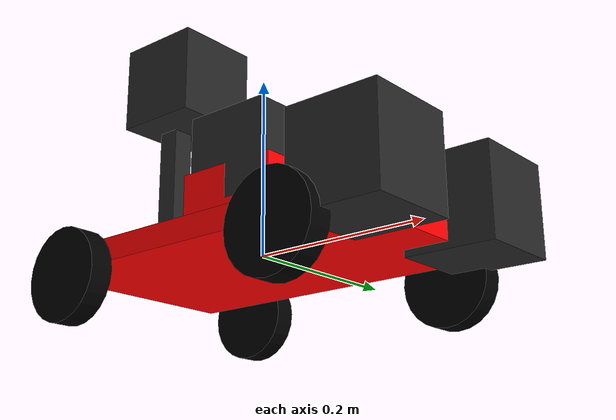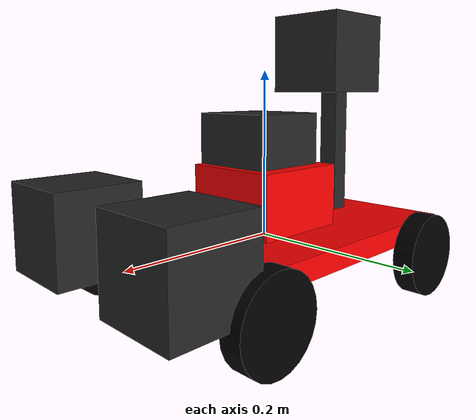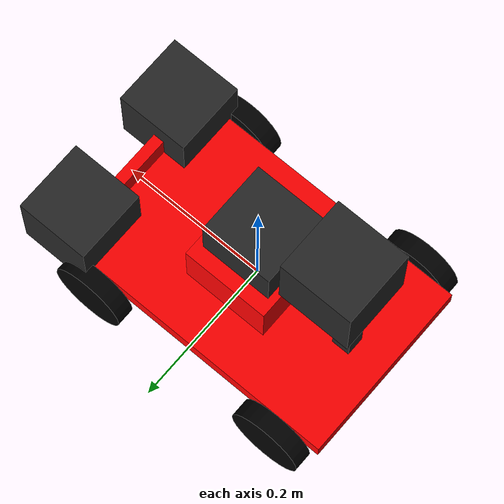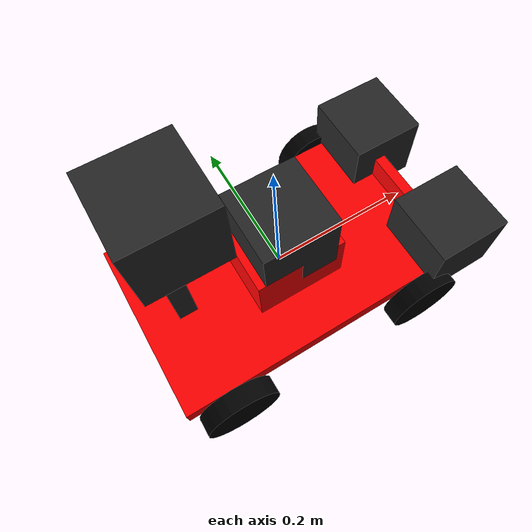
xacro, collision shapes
<?xml version="1.0"?>
<robot xmlns:xacro="http://www.ros.org/wiki/xacro" name="skid_steer">

    <xacro:include filename="$(find skid_steer_description)/urdf/wheels.xacro"/>
    <xacro:include filename="$(find skid_steer_description)/urdf/sensors.xacro"/>
    <xacro:include filename="$(find skid_steer_description)/urdf/plugins.gazebo"/>

    <link name="baseElbase">
    </link>
    <joint name="baseElbase_joint" type="fixed">
        <origin xyz="0.0 0.0 0.0" rpy="0.0 0.0 0.0"/>
        <parent link="baseElbase"/>
        <child link="base_link"/>
        <axis xyz="0.0 0.0 0.0"/>
        <limit lower="0.0" upper="0.0" effort="0.0" velocity="0.0"/>
    </joint>
    <link name="base_link">
        <inertial>
            <origin xyz="0.0 0.0 0.0" rpy="0.0 0.0 0.0"/>
            <mass value="10.0"/>
            <inertia ixx="0.1" ixy="0.0" ixz="0.0" iyy="0.1" iyz="0.0" izz="0.1"/>
        </inertial>
        <visual name="base_link_visual">
            <origin xyz="0.0 0.0 0.0" rpy="0.0 0.0 0.0"/>
            <geometry>
                <box size="0.4 0.25 0.025"/>
            </geometry>
            <material name="">
                <color rgba="1 0 0 1.0"/>
                <texture filename=""/>
            </material>
        </visual>
        <collision>
            <origin xyz="0.0 0.0 0.0" rpy="0.0 0.0 0.0"/>
            <geometry>
                <box size="0.4 0.25 0.025"/>
            </geometry>
        </collision>
    </link>
    <link name="above_base">
        <inertial>
            <origin xyz="0.0 0.0 0.0" rpy="0.0 0.0 0.0"/>
            <mass value=".5"/>
            <inertia ixx="0.0" ixy="0.0" ixz="0.0" iyy="0.0" iyz="0.0" izz="0.0"/>
        </inertial>
        <visual name="above_base_visual">
            <origin xyz="0.0 0.0 0.0" rpy="0.0 0.0 0.0"/>
            <geometry>
                <box size="0.12 0.12 0.075"/>
            </geometry>
            <material name="">
                <color rgba="1 0 0 1.0"/>
                <texture filename=""/>
            </material>
        </visual>
        <collision>
            <origin xyz="0.0 0.0 0.0" rpy="0.0 0.0 0.0"/>
            <geometry>
                <box size="0.12 0.12 0.075"/>
            </geometry>
        </collision>
    </link>
    <joint name="above_base_joint" type="fixed">
        <origin xyz="0.0 0.0 0.05" rpy="0.0 0.0 0.0"/>
        <parent link="base_link"/>
        <child link="above_base"/>
        <axis xyz="0.0 0.0 0.0"/>
        <limit lower="0.0" upper="0.0" effort="0.0" velocity="0.0"/>
    </joint>

    <link name="front_base">
        <inertial>
            <origin xyz="0.0 0.0 0.0" rpy="0.0 0.0 0.0"/>
            <mass value=".3"/>
            <inertia ixx="0.0" ixy="0.0" ixz="0.0" iyy="0.0" iyz="0.0" izz="0.0"/>
        </inertial>
        <visual name="front_base_visual">
            <origin xyz="0.0 0.0 0.0" rpy="0.0 0.0 0.0"/>
            <geometry>
                <box size="0.015 0.25 0.033"/>
            </geometry>
            <material name="">
                <color rgba="1 0 0 1.0"/>
                <texture filename=""/>
            </material>
        </visual>
        <collision>
            <origin xyz="0.0 0.0 0.0" rpy="0.0 0.0 0.0"/>
            <geometry>
                <box size="0.015 0.25 0.033"/>
            </geometry>
        </collision>
    </link>
    <joint name="front_base_joint" type="fixed">
        <origin xyz="0.19 0.0 0.030" rpy="0.0 0.0 0.0"/>
        <parent link="base_link"/>
        <child link="front_base"/>
        <axis xyz="0.0 0.0 0.0"/>
        <limit lower="0.0" upper="0.0" effort="0.0" velocity="0.0"/>
    </joint>

    <link name="middle_base">
        <inertial>
            <origin xyz="0.0 0.0 0.0" rpy="0.0 0.0 0.0"/>
            <mass value=".4"/>
            <inertia ixx="0.0" ixy="0.0" ixz="0.0" iyy="0.0" iyz="0.0" izz="0.0"/>
        </inertial>
        <visual name="middle_base_visual">
            <origin xyz="0.0 0.0 0.0" rpy="0.0 0.0 0.0"/>
            <geometry>
                <box size="0.025 0.025 0.2"/>
            </geometry>
            <material name="">
                <color rgba=".15 0.15 0.15 1.0"/>
                <texture filename=""/>
            </material>
        </visual>
        <collision>
            <origin xyz="0.0 0.0 0.0" rpy="0.0 0.0 0.0"/>
            <geometry>
                <box size="0.025 0.025 0.2"/>
            </geometry>
        </collision>
    </link>
    <joint name="middle_base_joint" type="fixed">
        <origin xyz="-0.14 0.0 0.1" rpy="0.0 0.0 0.0"/>
        <parent link="base_link"/>
        <child link="middle_base"/>
        <axis xyz="0.0 0.0 0.0"/>
        <limit lower="0.0" upper="0.0" effort="0.0" velocity="0.0"/>
    </joint>

</robot>

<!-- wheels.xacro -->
<robot xmlns:xacro="http://www.ros.org/wiki/xacro">

    <xacro:macro name="wheel" params="prefix">
        <link name="${prefix}_wheel">
            <inertial>
                <origin xyz="0.0 0.0 0.0" rpy="0.0 0.0 0.0"/>
                <mass value="1.0"/>
                <inertia ixx="0.01" ixy="0.0" ixz="0.0" iyy="0.01" iyz="0.0" izz="0.01"/>
            </inertial>
            <visual name="${prefix}_wheel_visual">
                <origin xyz="0.0 0.0 0.0" rpy="0.0 0 0"/>
                <geometry>
                    <cylinder radius="0.05" length="0.025"/>
                </geometry>
                <material name="">
                    <color rgba="0.0 0.0 0.0 1.0"/>
                    <texture filename=""/>
                </material>
            </visual>
            <collision>
                <origin xyz="0.0 0.0 0.0" rpy="0.0 0 0"/>
                <geometry>
                    <cylinder radius="0.05" length="0.025"/>
                </geometry>
            </collision>
        </link>
    </xacro:macro>
    <xacro:wheel prefix= "f_right" />
    <xacro:wheel prefix= "f_left" />
    <xacro:wheel prefix= "b_right" />
    <xacro:wheel prefix= "b_left" />

    <xacro:property name="z" value="-.025" />
    <joint name="f_left_wheel_joint" type="continuous">
        <origin xyz="0.14 -0.14 ${z}" rpy="1.5707 0.0 0.0"/>
        <parent link="base_link"/>
        <child link="f_left_wheel"/>
        <axis xyz="0.0 0.0 1.0"/>
        <limit lower="0.0" upper="0.0" effort="0.0" velocity="0.0"/>
    </joint>
    <joint name="f_right_wheel_joint" type="continuous">
        <origin xyz="0.14 0.14 ${z}" rpy="1.5707 0.0 0.0"/>
        <parent link="base_link"/>
        <child link="f_right_wheel"/>
        <axis xyz="0.0 0.0 1.0"/>
        <limit lower="0.0" upper="0.0" effort="0.0" velocity="0.0"/>
    </joint>
    <joint name="b_left_wheel_joint" type="continuous">
        <origin xyz="-0.14 -0.14 ${z}" rpy="1.5707 0.0 0.0"/>
        <parent link="base_link"/>
        <child link="b_left_wheel"/>
        <axis xyz="0.0 0.0 1.0"/>
        <limit lower="0.0" upper="0.0" effort="0.0" velocity="0.0"/>
    </joint>
    <joint name="b_right_wheel_joint" type="continuous">
        <origin xyz="-0.14 0.14 ${z}" rpy="1.5707 0.0 0.0"/>
        <parent link="base_link"/>
        <child link="b_right_wheel"/>
        <axis xyz="0.0 0.0 1.0"/>
        <limit lower="0.0" upper="0.0" effort="0.0" velocity="0.0"/>
    </joint>

</robot>

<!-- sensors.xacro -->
<robot xmlns:xacro="http://www.ros.org/wiki/xacro">

    <link name="lidar">
        <inertial>
            <origin xyz="0.0 0.0 0.0" rpy="0.0 0.0 0.0"/>
            <mass value="0.0"/>
              <inertia ixx="1.0" ixy="0.0" ixz="0.0" iyy="1.0" iyz="0.0" izz="1.0"/>
        </inertial>
        <visual name="lidar_visual">
            <origin xyz="0.0 0.0 0.0" rpy="0.0 0.0 0.0"/>
            <geometry>
                <mesh filename="package://skid_steer_description/meshes/lidaar_link.STL"/>
            </geometry>
            <material name="">
                <color rgba=".15 .15 .15 1.0"/>
                <texture filename=""/>
            </material>
        </visual>
        <collision>
            <origin xyz="0.0 0.0 0.0" rpy="0.0 0.0 0.0"/>
            <geometry>
                <box size="0.1 0.1 0.1"/>
            </geometry>
        </collision>
    </link>
    <joint name="lidar_joint" type="fixed">
        <origin xyz="0.0 -0.01 0.05" rpy="1.5707 0 1.5707"/>
        <parent link="above_base"/>
        <child link="lidar"/>
        <axis xyz="0.0 0.0 0.0"/>
        <limit lower="0.0" upper="0.0" effort="0.0" velocity="0.0"/>
    </joint>

    <link name="laser_support">
    </link>
    <joint name="laser_support_joint" type="fixed">
        <origin xyz="0.0 0.0 0.0" rpy="0 -1.5707 -1.5707"/>
        <parent link="lidar"/>
        <child link="laser_support"/>
        <axis xyz="0.0 0.0 0.0"/>
        <limit lower="0.0" upper="0.0" effort="0.0" velocity="0.0"/>
    </joint>

    <link name="kinect">
        <inertial>
            <origin xyz="0.0 0.0 0.0" rpy="0.0 0.0 0.0"/>
            <mass value="0.2"/>
            <inertia ixx="0.0" ixy="0.0" ixz="0.0" iyy="0.0" iyz="0.0" izz="0.0"/>
        </inertial>
        <visual name="kinect_visual">
            <origin xyz="0.0 0.0 0.0" rpy="0.0 0.0 0.0"/>
            <geometry>
                <mesh filename="package://skid_steer_description/meshes/kinect.dae" scale="0.5 0.5 0.5"/>
            </geometry>
            <material name="">
                <color rgba=".15 .15 .15 1.0"/>
                <texture filename=""/>
            </material>
        </visual>
        <collision>
            <origin xyz="0.0 0.0 0.0" rpy="0.0 0.0 0.0"/>
            <geometry>
                <box size="0.1 0.1 0.1"/>
            </geometry>
        </collision>
    </link>
    <joint name="kinect_joint" type="fixed">
        <origin xyz="0.017 0.0 0.125" rpy="0 0 0"/>
        <parent link="middle_base"/>
        <child link="kinect"/>
        <axis xyz="0.0 0.0 0.0"/>
        <limit lower="0.0" upper="0.0" effort="0.0" velocity="0.0"/>
    </joint>

    <link name="ultrasonic_right_s">
        <inertial>
            <origin xyz="0.0 0.0 0.0" rpy="0.0 0.0 0.0"/>
            <mass value="0.1"/>
            <inertia ixx="0.0" ixy="0.0" ixz="0.0" iyy="0.0" iyz="0.0" izz="0.0"/>
        </inertial>
        <visual name="ultrasonic_right_s_visual">
            <origin xyz="0.0 0.0 0.0" rpy="0 0 0"/>
            <geometry>
                <mesh filename="package://skid_steer_description/meshes/HCSR04_Ultrasonic_Sensor.stl" scale=".035 .035 .04" />
            </geometry>
            <material name="">
                <color rgba=".15 .15 .15 1.0"/>
                <texture filename=""/>
            </material>
        </visual>
        <collision>
            <origin xyz="0.0 0.0 0.0" rpy="0.0 0.0 0.0"/>
            <geometry>
                <box size="0.1 0.1 0.1"/>
            </geometry>
        </collision>
    </link>
    <joint name="ultrasonic_right_s_joint" type="fixed">
        <origin xyz="0.01 0.09 0.0" rpy="1.5707 0 1.5707"/>
        <parent link="front_base"/>
        <child link="ultrasonic_right_s"/>
        <axis xyz="0.0 0.0 0.0"/>
        <limit lower="0.0" upper="0.0" effort="0.0" velocity="0.0"/>
    </joint>
    <link name="ultrasonic_support_r">
    </link>
    <joint name="ultrasonic_support_r_joint" type="fixed">
        <origin xyz="0.0 0.0 0.0" rpy="0 -1.5707 -1.5707"/>
        <parent link="ultrasonic_right_s"/>
        <child link="ultrasonic_support_r"/>
        <axis xyz="0.0 0.0 0.0"/>
        <limit lower="0.0" upper="0.0" effort="0.0" velocity="0.0"/>
    </joint>

    <link name="ultrasonic_left_s">
        <inertial>
            <origin xyz="0.0 0.0 0.0" rpy="0.0 0.0 0.0"/>
            <mass value="0.1"/>
            <inertia ixx="0.0" ixy="0.0" ixz="0.0" iyy="0.0" iyz="0.0" izz="0.0"/>
        </inertial>
        <visual name="ultrasonic_left_s_visual">
            <origin xyz="0.0 0.0 0.0" rpy="0 0 0"/>
            <geometry>
                <mesh filename="package://skid_steer_description/meshes/HCSR04_Ultrasonic_Sensor.stl" scale=".035 .035 .04" />
            </geometry>
            <material name="">
                <color rgba=".15 .15 .15 1.0"/>
                <texture filename=""/>
            </material>
        </visual>
        <collision>
            <origin xyz="0.0 0.0 0.0" rpy="0.0 0.0 0.0"/>
            <geometry>
                <box size="0.1 0.1 0.1"/>
            </geometry>
        </collision>
    </link>
    <joint name="ultrasonic_left_s_joint" type="fixed">
        <origin xyz="0.01 -0.09 0.0" rpy="1.5707 0 1.5707"/>
        <parent link="front_base"/>
        <child link="ultrasonic_left_s"/>
        <axis xyz="0.0 0.0 0.0"/>
        <limit lower="0.0" upper="0.0" effort="0.0" velocity="0.0"/>
    </joint>

    <link name="ultrasonic_support_l">
    </link>
    <joint name="ultrasonic_support_l_joint" type="fixed">
        <origin xyz="0.0 0.0 0.0" rpy="0 -1.5707 -1.5707"/>
        <parent link="ultrasonic_left_s"/>
        <child link="ultrasonic_support_l"/>
        <axis xyz="0.0 0.0 0.0"/>
        <limit lower="0.0" upper="0.0" effort="0.0" velocity="0.0"/>
    </joint>
</robot>
